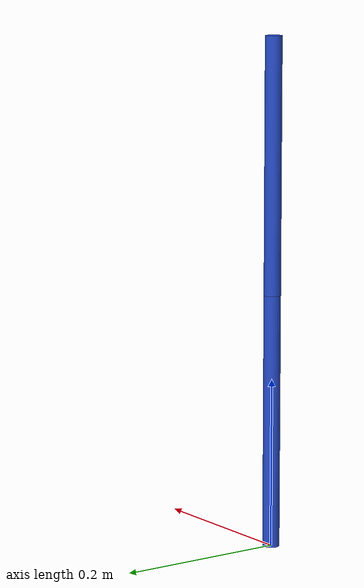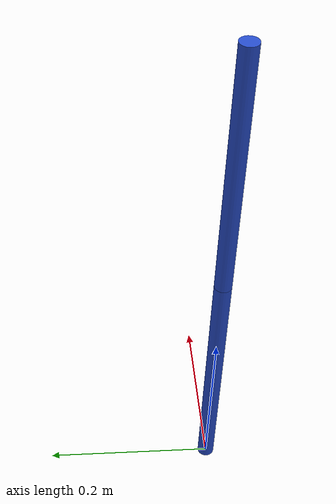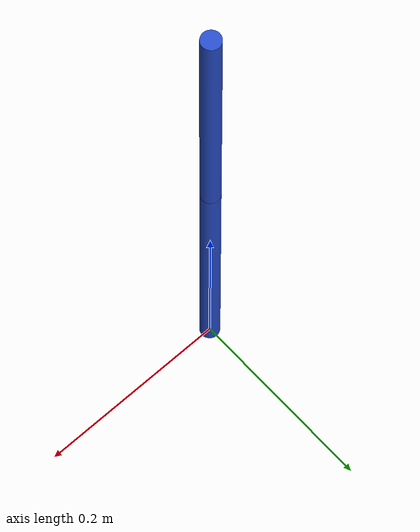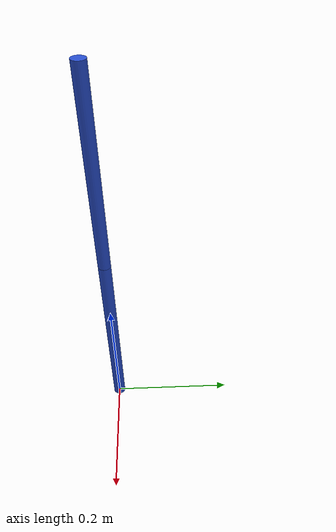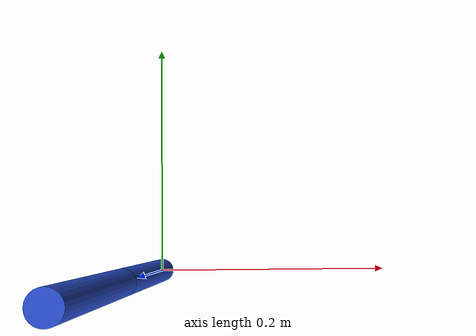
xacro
<?xml version="1.0"?>
<robot xmlns:xacro="http://www.ros.org/wiki/xacro">

    <link name="pendulum_link_1">
        <visual>
            <geometry>
                <cylinder radius="0.01" length="0.3"/>
            </geometry>
            <material name="blue"/>
            <origin xyz="0 0 0.15" rpy="0 0 0"/>
        </visual>
        <collision>
            <geometry>
                <cylinder radius="0.01" length="0.3"/>
            </geometry>
            <material name="blue"/>
            <origin xyz="0 0 0.15" rpy="0 0 0"/>
        </collision>
        <xacro:cylinder_z_inertia m="0.15" r="0.01" h="0.3"
                                  o_xyz="0 0 0.15" o_rpy="0 0 0"/>
    </link>

    <link name="pendulum_link_2">
        <visual>
            <geometry>
                <cylinder radius="0.01" length="0.3"/>
            </geometry>
            <material name="blue"/>
            <origin xyz="0 0 0.15" rpy="0 0 0"/>
        </visual>
        <collision>
            <geometry>
                <cylinder radius="0.01" length="0.3"/>
            </geometry>
            <material name="gray"/>
            <origin xyz="0 0 0.15" rpy="0 0 0"/>
        </collision>
        <xacro:cylinder_z_inertia m="0.15" r="0.01" h="0.3"
                                  o_xyz="0 0 0.15" o_rpy="0 0 0"/>
    </link>

    <joint name="pendulum_joint_2" type="continuous">
        <parent link="pendulum_link_1"/>
        <child link="pendulum_link_2"/>
        <origin xyz="0 0 0.3" rpy="0 0 3.14159"/>
        <axis xyz="1 0 0"/>
        <limit effort="1000.0" velocity="10.0"/>
        <dynamics damping="0.0001" friction="0.0"/>
    </joint>

</robot>
